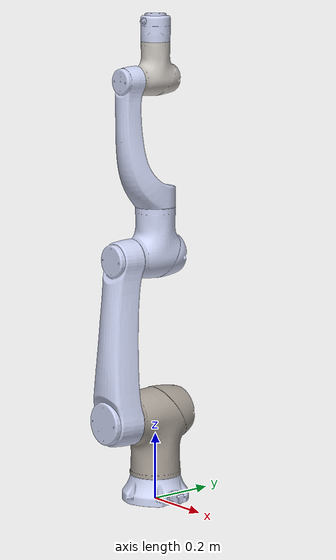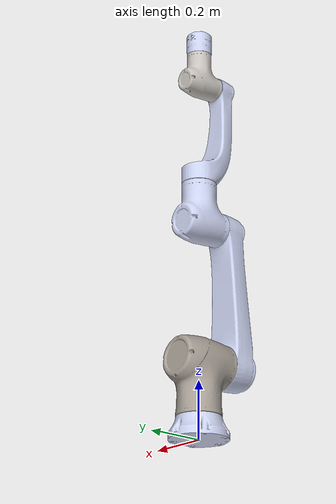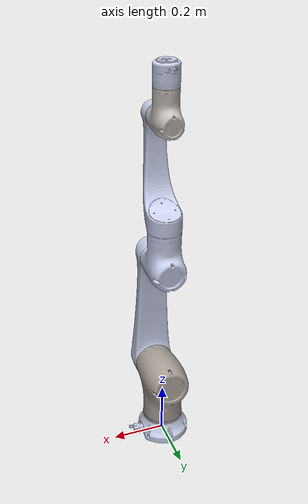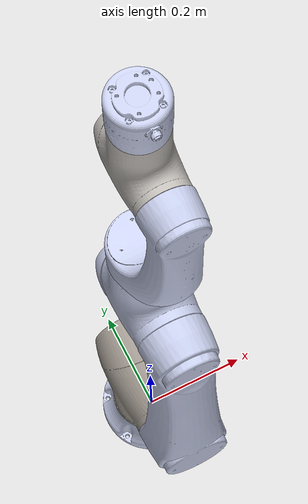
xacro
<?xml version="1.0"?>
<robot xmlns:xacro="http://www.ros.org/wiki/xacro" name="MyCo-10-1.00">
    <xacro:arg name="initial_positions_file" default="initial_positions.yaml" />

    <!-- Import MyCo-10-1.00 urdf file -->
    <xacro:include filename="$(find myco_description)/urdf/MyCo-10-1.00.urdf.xacro" />

    <!-- Import control_xacro -->
    <xacro:include filename="MyCo-10-1.00.ros2_control.xacro" />

    <xacro:MyCo-10-1.00_ros2_control name="FakeSystem" initial_positions_file="$(arg initial_positions_file)"/>

</robot>

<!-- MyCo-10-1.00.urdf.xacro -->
<robot
  name="MyCo-10-1.00" xmlns:xacro="http://www.ros.org/wiki/xacro">

  <xacro:include filename="$(find myco_description)/urdf/materials.xacro" />

  <xacro:include filename="$(find myco_description)/urdf/myco_robot.gazebo" />

  <xacro:include filename="$(find myco_description)/urdf/myco_transmission.xacro" />

  <xacro:property name="PI" value="3.1415926535897931"/>

  <xacro:property name="density" value="3.09"/>

  <link name="world"/>

  <joint name="world_base" type="fixed">
    <origin
      xyz="0 0 0"
      rpy="0 0 -1.57080" />
    <parent
      link="world" />
    <child
      link="myco_base_link" />
  </joint>

  <link name="myco_base_link"/>

  <joint name="myco_base_joint" type="fixed">
    <origin
      xyz="0 0 0"
      rpy="0 0 ${PI/2}" />
    <parent
      link="myco_base_link" />
    <child
      link="myco_base" />
  </joint>

 <link
    name="myco_base">
    <inertial>
      <origin
        xyz="-0.00226511417088145 4.35660439900888E-06 0.0325128575950572"
        rpy="0 0 0" />
      <mass
        value="1.66727756182539" />
      <inertia
        ixx="0.00426928883114883"
        ixy="6.03074551179065E-08"
        ixz="-6.92087820491915E-05"
        iyy="0.00385585366385577"
        iyz="-5.51284427647888E-08"
        izz="0.00682044787423867" />
    </inertial>
    <visual>
      <origin
        xyz="0 0 0"
        rpy="0 0 0" />
      <geometry>
        <mesh
          filename="file://$(find myco_description)/meshes/MyCo-10-1.00/myco_base.STL" />
      </geometry>
      <material
        name="">
        <color
          rgba="0.792156862745098 0.819607843137255 0.929411764705882 1" />
      </material>
    </visual>
    <collision>
      <origin
        xyz="0 0 0"
        rpy="0 0 0" />
      <geometry>
        <mesh
          filename="file://$(find myco_description)/meshes/MyCo-10-1.00/myco_base.STL" />
      </geometry>
    </collision>
  </link>
  <link
    name="myco_link1">
    <inertial>
      <origin
        xyz="-2.04814028758122E-06 -0.00451362610438685 -0.0447854028917552"
        rpy="0 0 0" />
      <mass
        value="6.22031236835115" />
      <inertia
        ixx="0.0387678101436278"
        ixy="-2.07468109521418E-07"
        ixz="2.58565882241433E-07"
        iyy="0.0375609277760459"
        iyz="0.00648787752065111"
        izz="0.0207012105031854" />
    </inertial>
    <visual>
      <origin
        xyz="0 0 0"
        rpy="0 0 0" />
      <geometry>
        <mesh
          filename="file://$(find myco_description)/meshes/MyCo-10-1.00/myco_link1.STL" />
      </geometry>
      <material
        name="">
        <color
          rgba="0.650980392156863 0.619607843137255 0.584313725490196 1" />
      </material>
    </visual>
    <collision>
      <origin
        xyz="0 0 0"
        rpy="0 0 0" />
      <geometry>
        <mesh
          filename="file://$(find myco_description)/meshes/MyCo-10-1.00/myco_link1.STL" />
      </geometry>
    </collision>
  </link>
  <joint
    name="myco_joint1"
    type="revolute">
    <origin
      xyz="0 0 0.26"
      rpy="0 0 0" />
    <parent
      link="myco_base" />
    <child
      link="myco_link1" />
    <axis
      xyz="0 0 1" />
    <limit
      lower="-6.283"
      upper="6.283"
      effort="200"
      velocity="1.57" />
  </joint>
  <link
    name="myco_link2">
    <inertial>
      <origin
        xyz="-1.72466028125508E-07 0.204406349113321 0.145154384088546"
        rpy="0 0 0" />
      <mass
        value="5.50191315340711" />
      <inertia
        ixx="0.16312983067334"
        ixy="-1.97888203261498E-05"
        ixz="1.26796648865705E-06"
        iyy="0.00956070821041633"
        iyz="0.00731026461227424"
        izz="0.165582018773017" />
    </inertial>
    <visual>
      <origin
        xyz="0 0 0"
        rpy="0 0 0" />
      <geometry>
        <mesh
          filename="file://$(find myco_description)/meshes/MyCo-10-1.00/myco_link2.STL" />
      </geometry>
      <material
        name="">
        <color
          rgba="0.792156862745098 0.819607843137255 0.933333333333333 1" />
      </material>
    </visual>
    <collision>
      <origin
        xyz="0 0 0"
        rpy="0 0 0" />
      <geometry>
        <mesh
          filename="file://$(find myco_description)/meshes/MyCo-10-1.00/myco_link2.STL" />
      </geometry>
    </collision>
  </link>
  <joint
    name="myco_joint2"
    type="revolute">
    <origin
      xyz="0 0 0"
      rpy="1.5708 0 0" />
    <parent
      link="myco_link1" />
    <child
      link="myco_link2" />
    <axis
      xyz="0 0 1" />
    <limit
      lower="-2.356"
      upper="2.356"
      effort="200"
      velocity="1.57" />
  </joint>
  <link
    name="myco_link3">
    <inertial>
      <origin
        xyz="0.0370865473376023 -2.76453458554594E-06 -0.00590528562970721"
        rpy="0 0 0" />
      <mass
        value="3.16386368088204" />
      <inertia
        ixx="0.00694845120267307"
        ixy="4.19135767352563E-07"
        ixz="-0.00236462518295544"
        iyy="0.0129640963555332"
        iyz="-1.19644882818263E-07"
        izz="0.0121432395299724" />
    </inertial>
    <visual>
      <origin
        xyz="0 0 0"
        rpy="0 0 0" />
      <geometry>
        <mesh
          filename="file://$(find myco_description)/meshes/MyCo-10-1.00/myco_link3.STL" />
      </geometry>
      <material
        name="">
        <color
          rgba="0.792156862745098 0.819607843137255 0.933333333333333 1" />
      </material>
    </visual>
    <collision>
      <origin
        xyz="0 0 0"
        rpy="0 0 0" />
      <geometry>
        <mesh
          filename="file://$(find myco_description)/meshes/MyCo-10-1.00/myco_link3.STL" />
      </geometry>
    </collision>
  </link>
  <joint
    name="myco_joint3"
    type="revolute">
    <origin
      xyz="0 0.48 0.0001"
      rpy="3.1416 0 1.5708" />
    <parent
      link="myco_link2" />
    <child
      link="myco_link3" />
    <axis
      xyz="0 0 1" />
    <limit
      lower="-2.618"
      upper="2.618"
      effort="200"
      velocity="1.57" />
  </joint>
  <link
    name="myco_link4">
    <inertial>
      <origin
        xyz="3.10582139925017E-06 -0.0657841110409934 0.30002289850104"
        rpy="0 0 0" />
      <mass
        value="2.4465342117515" />
      <inertia
        ixx="0.0404829943220282"
        ixy="2.16095068378628E-07"
        ixz="1.78801612522478E-06"
        iyy="0.0367248122705438"
        iyz="0.00973189111865304"
        izz="0.00714011188335296" />
    </inertial>
    <visual>
      <origin
        xyz="0 0 0"
        rpy="0 0 0" />
      <geometry>
        <mesh
          filename="file://$(find myco_description)/meshes/MyCo-10-1.00/myco_link4.STL" />
      </geometry>
      <material
        name="">
        <color
          rgba="0.792156862745098 0.819607843137255 0.933333333333333 1" />
      </material>
    </visual>
    <collision>
      <origin
        xyz="0 0 0"
        rpy="0 0 0" />
      <geometry>
        <mesh
          filename="file://$(find myco_description)/meshes/MyCo-10-1.00/myco_link4.STL" />
      </geometry>
    </collision>
  </link>
  <joint
    name="myco_joint4"
    type="revolute">
    <origin
      xyz="0 0 0"
      rpy="1.5708 0 1.5708" />
    <parent
      link="myco_link3" />
    <child
      link="myco_link4" />
    <axis
      xyz="0 0 1" />
    <limit
      lower="-6.283"
      upper="6.283"
      effort="104"
      velocity="1.57" />
  </joint>
  <link
    name="myco_link5">
    <inertial>
      <origin
        xyz="5.48063679309399E-06 -0.0273503516578113 -0.00487896751352308"
        rpy="0 0 0" />
      <mass
        value="1.35242987480561" />
      <inertia
        ixx="0.0033233475772021"
        ixy="2.20921729037414E-07"
        ixz="-5.56828564298477E-07"
        iyy="0.00178064767660598"
        iyz="0.00062685776066528"
        izz="0.0028761151721055" />
    </inertial>
    <visual>
      <origin
        xyz="0 0 0"
        rpy="0 0 0" />
      <geometry>
        <mesh
          filename="file://$(find myco_description)/meshes/MyCo-10-1.00/myco_link5.STL" />
      </geometry>
      <material
        name="">
        <color
          rgba="0.772549019607843 0.752941176470588 0.733333333333333 1" />
      </material>
    </visual>
    <collision>
      <origin
        xyz="0 0 0"
        rpy="0 0 0" />
      <geometry>
        <mesh
          filename="file://$(find myco_description)/meshes/MyCo-10-1.00/myco_link5.STL" />
      </geometry>
    </collision>
  </link>
  <joint
    name="myco_joint5"
    type="revolute">
    <origin
      xyz="0 0 0.52"
      rpy="-1.5708 0 0" />
    <parent
      link="myco_link4" />
    <child
      link="myco_link5" />
    <axis
      xyz="0 0 1" />
    <limit
      lower="-2.565"
      upper="2.565"
      effort="34"
      velocity="1.57" />
  </joint>
  <link
    name="myco_link6">
    <inertial>
      <origin
        xyz="-5.86766729192399E-07 -0.000141968967464643 0.153530502178928"
        rpy="0 0 0" />
      <mass
        value="0.402797648322159" />
      <inertia
        ixx="0.000347097257606524"
        ixy="-1.16862780488247E-07"
        ixz="9.18006714915479E-08"
        iyy="0.000344713179552748"
        iyz="9.96624646177017E-07"
        izz="0.000376859513084614" />
    </inertial>
    <visual>
      <origin
        xyz="0 0 0"
        rpy="0 0 0" />
      <geometry>
        <mesh
          filename="file://$(find myco_description)/meshes/MyCo-10-1.00/myco_link6.STL" />
      </geometry>
      <material
        name="">
        <color
          rgba="0.792156862745098 0.819607843137255 0.933333333333333 1" />
      </material>
    </visual>
    <collision>
      <origin
        xyz="0 0 0"
        rpy="0 0 0" />
      <geometry>
        <mesh
          filename="file://$(find myco_description)/meshes/MyCo-10-1.00/myco_link6.STL" />
      </geometry>
    </collision>
  </link>
  <joint
    name="myco_joint6"
    type="revolute">
    <origin
      xyz="0 0 0"
      rpy="1.5708 0 0" />
    <parent
      link="myco_link5" />
    <child
      link="myco_link6" />
    <axis
      xyz="0 0 1" />
    <limit
      lower="-6.283"
      upper="6.283"
      effort="34"
      velocity="1.57" />
  </joint>
  <link
    name="myco_end_link">
      </link>
  <joint
    name="myco_end_joint"
    type="fixed">
    <origin
      xyz="0 0 0.192"
      rpy="0 0 0" />
    <parent
      link="myco_link6" />
    <child
      link="myco_end_link" />
    <axis
      xyz="0 0 0" />
  </joint>

</robot>
